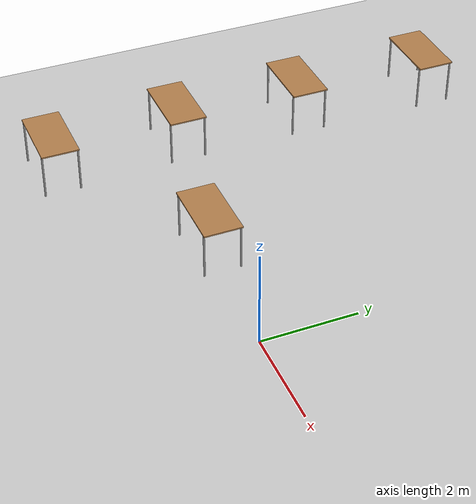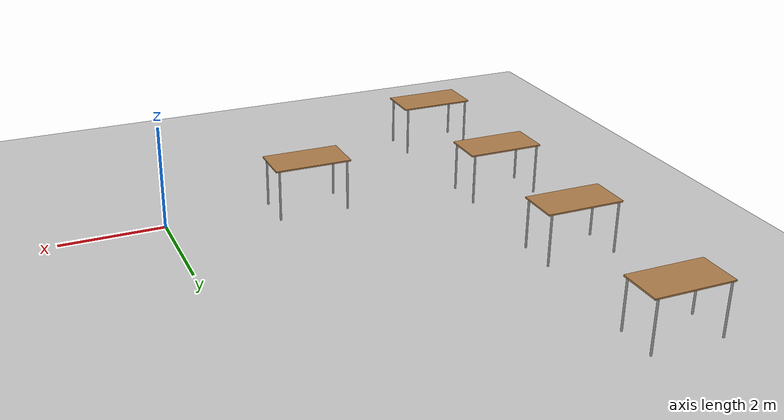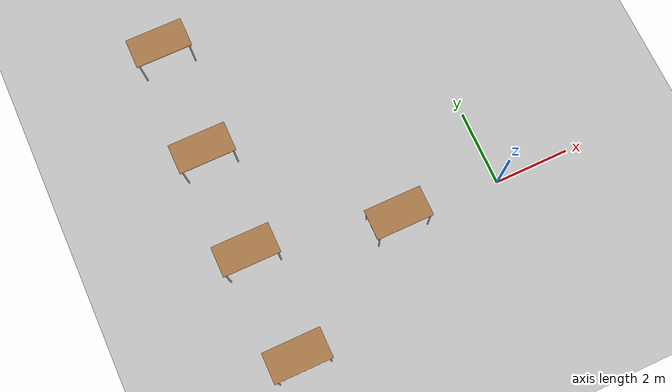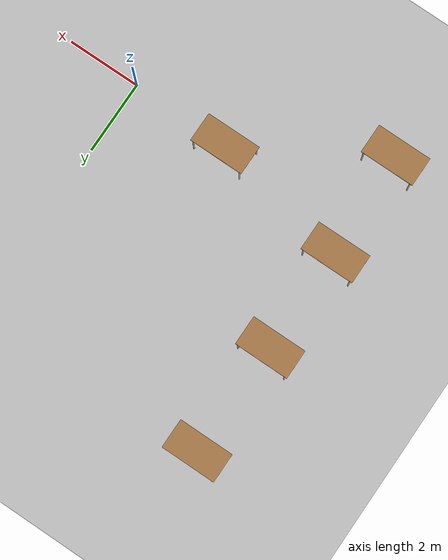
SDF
<sdf version="1.6">
 <world name="default">
  <model name="ground_plane">
   <static>1</static>
   <link name="link">
    <collision name="collision">
     <geometry><plane><normal>0 0 1</normal><size>100 100</size></plane></geometry>
     <surface>
      <contact><collide_bitmask>65535</collide_bitmask></contact>
      <friction><ode><mu>100</mu><mu2>50</mu2></ode></friction>
     </surface>
    </collision>
    <visual name="visual">
     <cast_shadows>0</cast_shadows>
     <geometry><plane><normal>0 0 1</normal><size>100 100</size></plane></geometry>
     <material>
      <script><uri>file://media/materials/scripts/gazebo.material</uri><name>Gazebo/Grey</name></script>
     </material>
    </visual>
   </link>
  </model>
  <model name="table_3">
   <static>1</static>
   <link name="link">
    <collision name="surface">
     <pose>0 0 1 0 -0 0</pose>
     <geometry><box><size>1.5 0.8 0.03</size></box></geometry>
     <surface><friction><ode><mu>0.6</mu><mu2>0.6</mu2></ode></friction></surface>
    </collision>
    <visual name="visual1">
     <pose>0 0 1 0 -0 0</pose>
     <geometry><box><size>1.5 0.8 0.03</size></box></geometry>
     <material>
      <script><uri>file://media/materials/scripts/gazebo.material</uri><name>Gazebo/Wood</name></script>
     </material>
    </visual>
    <collision name="front_left_leg">
     <pose>0.68 0.38 0.5 0 -0 0</pose>
     <geometry><cylinder><radius>0.02</radius><length>1</length></cylinder></geometry>
    </collision>
    <visual name="front_left_leg">
     <pose>0.68 0.38 0.5 0 -0 0</pose>
     <geometry><cylinder><radius>0.02</radius><length>1</length></cylinder></geometry>
     <material>
      <script><uri>file://media/materials/scripts/gazebo.material</uri><name>Gazebo/Grey</name></script>
     </material>
    </visual>
    <collision name="front_right_leg">
     <pose>0.68 -0.38 0.5 0 -0 0</pose>
     <geometry><cylinder><radius>0.02</radius><length>1</length></cylinder></geometry>
    </collision>
    <visual name="front_right_leg">
     <pose>0.68 -0.38 0.5 0 -0 0</pose>
     <geometry><cylinder><radius>0.02</radius><length>1</length></cylinder></geometry>
     <material>
      <script><uri>file://media/materials/scripts/gazebo.material</uri><name>Gazebo/Grey</name></script>
     </material>
    </visual>
    <collision name="back_right_leg">
     <pose>-0.68 -0.38 0.5 0 -0 0</pose>
     <geometry><cylinder><radius>0.02</radius><length>1</length></cylinder></geometry>
    </collision>
    <visual name="back_right_leg">
     <pose>-0.68 -0.38 0.5 0 -0 0</pose>
     <geometry><cylinder><radius>0.02</radius><length>1</length></cylinder></geometry>
     <material>
      <script><uri>file://media/materials/scripts/gazebo.material</uri><name>Gazebo/Grey</name></script>
     </material>
    </visual>
    <collision name="back_left_leg">
     <pose>-0.68 0.38 0.5 0 -0 0</pose>
     <geometry><cylinder><radius>0.02</radius><length>1</length></cylinder></geometry>
    </collision>
    <visual name="back_left_leg">
     <pose>-0.68 0.38 0.5 0 -0 0</pose>
     <geometry><cylinder><radius>0.02</radius><length>1</length></cylinder></geometry>
     <material>
      <script><uri>file://media/materials/scripts/gazebo.material</uri><name>Gazebo/Grey</name></script>
     </material>
    </visual>
   </link>
   <pose>-2.77057 0.136974 0 0 -0 0</pose>
  </model>
  <model name="table_9">
   <static>1</static>
   <link name="link">
    <collision name="surface">
     <pose>0 0 1 0 -0 0</pose>
     <geometry><box><size>1.5 0.8 0.03</size></box></geometry>
     <surface><friction><ode><mu>0.6</mu><mu2>0.6</mu2></ode></friction></surface>
    </collision>
    <visual name="visual1">
     <pose>0 0 1 0 -0 0</pose>
     <geometry><box><size>1.5 0.8 0.03</size></box></geometry>
     <material>
      <script><uri>file://media/materials/scripts/gazebo.material</uri><name>Gazebo/Wood</name></script>
     </material>
    </visual>
    <collision name="front_left_leg">
     <pose>0.68 0.38 0.5 0 -0 0</pose>
     <geometry><cylinder><radius>0.02</radius><length>1</length></cylinder></geometry>
    </collision>
    <visual name="front_left_leg">
     <pose>0.68 0.38 0.5 0 -0 0</pose>
     <geometry><cylinder><radius>0.02</radius><length>1</length></cylinder></geometry>
     <material>
      <script><uri>file://media/materials/scripts/gazebo.material</uri><name>Gazebo/Grey</name></script>
     </material>
    </visual>
    <collision name="front_right_leg">
     <pose>0.68 -0.38 0.5 0 -0 0</pose>
     <geometry><cylinder><radius>0.02</radius><length>1</length></cylinder></geometry>
    </collision>
    <visual name="front_right_leg">
     <pose>0.68 -0.38 0.5 0 -0 0</pose>
     <geometry><cylinder><radius>0.02</radius><length>1</length></cylinder></geometry>
     <material>
      <script><uri>file://media/materials/scripts/gazebo.material</uri><name>Gazebo/Grey</name></script>
     </material>
    </visual>
    <collision name="back_right_leg">
     <pose>-0.68 -0.38 0.5 0 -0 0</pose>
     <geometry><cylinder><radius>0.02</radius><length>1</length></cylinder></geometry>
    </collision>
    <visual name="back_right_leg">
     <pose>-0.68 -0.38 0.5 0 -0 0</pose>
     <geometry><cylinder><radius>0.02</radius><length>1</length></cylinder></geometry>
     <material>
      <script><uri>file://media/materials/scripts/gazebo.material</uri><name>Gazebo/Grey</name></script>
     </material>
    </visual>
    <collision name="back_left_leg">
     <pose>-0.68 0.38 0.5 0 -0 0</pose>
     <geometry><cylinder><radius>0.02</radius><length>1</length></cylinder></geometry>
    </collision>
    <visual name="back_left_leg">
     <pose>-0.68 0.38 0.5 0 -0 0</pose>
     <geometry><cylinder><radius>0.02</radius><length>1</length></cylinder></geometry>
     <material>
      <script><uri>file://media/materials/scripts/gazebo.material</uri><name>Gazebo/Grey</name></script>
     </material>
    </visual>
   </link>
   <pose>-6.42408 6.68953 0 0 -0 0</pose>
  </model>
  <model name="table_10">
   <static>1</static>
   <link name="link">
    <collision name="surface">
     <pose>0 0 1 0 -0 0</pose>
     <geometry><box><size>1.5 0.8 0.03</size></box></geometry>
     <surface><friction><ode><mu>0.6</mu><mu2>0.6</mu2></ode></friction></surface>
    </collision>
    <visual name="visual1">
     <pose>0 0 1 0 -0 0</pose>
     <geometry><box><size>1.5 0.8 0.03</size></box></geometry>
     <material>
      <script><uri>file://media/materials/scripts/gazebo.material</uri><name>Gazebo/Wood</name></script>
     </material>
    </visual>
    <collision name="front_left_leg">
     <pose>0.68 0.38 0.5 0 -0 0</pose>
     <geometry><cylinder><radius>0.02</radius><length>1</length></cylinder></geometry>
    </collision>
    <visual name="front_left_leg">
     <pose>0.68 0.38 0.5 0 -0 0</pose>
     <geometry><cylinder><radius>0.02</radius><length>1</length></cylinder></geometry>
     <material>
      <script><uri>file://media/materials/scripts/gazebo.material</uri><name>Gazebo/Grey</name></script>
     </material>
    </visual>
    <collision name="front_right_leg">
     <pose>0.68 -0.38 0.5 0 -0 0</pose>
     <geometry><cylinder><radius>0.02</radius><length>1</length></cylinder></geometry>
    </collision>
    <visual name="front_right_leg">
     <pose>0.68 -0.38 0.5 0 -0 0</pose>
     <geometry><cylinder><radius>0.02</radius><length>1</length></cylinder></geometry>
     <material>
      <script><uri>file://media/materials/scripts/gazebo.material</uri><name>Gazebo/Grey</name></script>
     </material>
    </visual>
    <collision name="back_right_leg">
     <pose>-0.68 -0.38 0.5 0 -0 0</pose>
     <geometry><cylinder><radius>0.02</radius><length>1</length></cylinder></geometry>
    </collision>
    <visual name="back_right_leg">
     <pose>-0.68 -0.38 0.5 0 -0 0</pose>
     <geometry><cylinder><radius>0.02</radius><length>1</length></cylinder></geometry>
     <material>
      <script><uri>file://media/materials/scripts/gazebo.material</uri><name>Gazebo/Grey</name></script>
     </material>
    </visual>
    <collision name="back_left_leg">
     <pose>-0.68 0.38 0.5 0 -0 0</pose>
     <geometry><cylinder><radius>0.02</radius><length>1</length></cylinder></geometry>
    </collision>
    <visual name="back_left_leg">
     <pose>-0.68 0.38 0.5 0 -0 0</pose>
     <geometry><cylinder><radius>0.02</radius><length>1</length></cylinder></geometry>
     <material>
      <script><uri>file://media/materials/scripts/gazebo.material</uri><name>Gazebo/Grey</name></script>
     </material>
    </visual>
   </link>
   <pose>-6.48377 3.65196 0 0 -0 0</pose>
  </model>
  <model name="table_11">
   <static>1</static>
   <link name="link">
    <collision name="surface">
     <pose>0 0 1 0 -0 0</pose>
     <geometry><box><size>1.5 0.8 0.03</size></box></geometry>
     <surface><friction><ode><mu>0.6</mu><mu2>0.6</mu2></ode></friction></surface>
    </collision>
    <visual name="visual1">
     <pose>0 0 1 0 -0 0</pose>
     <geometry><box><size>1.5 0.8 0.03</size></box></geometry>
     <material>
      <script><uri>file://media/materials/scripts/gazebo.material</uri><name>Gazebo/Wood</name></script>
     </material>
    </visual>
    <collision name="front_left_leg">
     <pose>0.68 0.38 0.5 0 -0 0</pose>
     <geometry><cylinder><radius>0.02</radius><length>1</length></cylinder></geometry>
    </collision>
    <visual name="front_left_leg">
     <pose>0.68 0.38 0.5 0 -0 0</pose>
     <geometry><cylinder><radius>0.02</radius><length>1</length></cylinder></geometry>
     <material>
      <script><uri>file://media/materials/scripts/gazebo.material</uri><name>Gazebo/Grey</name></script>
     </material>
    </visual>
    <collision name="front_right_leg">
     <pose>0.68 -0.38 0.5 0 -0 0</pose>
     <geometry><cylinder><radius>0.02</radius><length>1</length></cylinder></geometry>
    </collision>
    <visual name="front_right_leg">
     <pose>0.68 -0.38 0.5 0 -0 0</pose>
     <geometry><cylinder><radius>0.02</radius><length>1</length></cylinder></geometry>
     <material>
      <script><uri>file://media/materials/scripts/gazebo.material</uri><name>Gazebo/Grey</name></script>
     </material>
    </visual>
    <collision name="back_right_leg">
     <pose>-0.68 -0.38 0.5 0 -0 0</pose>
     <geometry><cylinder><radius>0.02</radius><length>1</length></cylinder></geometry>
    </collision>
    <visual name="back_right_leg">
     <pose>-0.68 -0.38 0.5 0 -0 0</pose>
     <geometry><cylinder><radius>0.02</radius><length>1</length></cylinder></geometry>
     <material>
      <script><uri>file://media/materials/scripts/gazebo.material</uri><name>Gazebo/Grey</name></script>
     </material>
    </visual>
    <collision name="back_left_leg">
     <pose>-0.68 0.38 0.5 0 -0 0</pose>
     <geometry><cylinder><radius>0.02</radius><length>1</length></cylinder></geometry>
    </collision>
    <visual name="back_left_leg">
     <pose>-0.68 0.38 0.5 0 -0 0</pose>
     <geometry><cylinder><radius>0.02</radius><length>1</length></cylinder></geometry>
     <material>
      <script><uri>file://media/materials/scripts/gazebo.material</uri><name>Gazebo/Grey</name></script>
     </material>
    </visual>
   </link>
   <pose>-6.49772 0.846697 0 0 -0 0</pose>
  </model>
  <model name="table_12">
   <static>1</static>
   <link name="link">
    <collision name="surface">
     <pose>0 0 1 0 -0 0</pose>
     <geometry><box><size>1.5 0.8 0.03</size></box></geometry>
     <surface><friction><ode><mu>0.6</mu><mu2>0.6</mu2></ode></friction></surface>
    </collision>
    <visual name="visual1">
     <pose>0 0 1 0 -0 0</pose>
     <geometry><box><size>1.5 0.8 0.03</size></box></geometry>
     <material>
      <script><uri>file://media/materials/scripts/gazebo.material</uri><name>Gazebo/Wood</name></script>
     </material>
    </visual>
    <collision name="front_left_leg">
     <pose>0.68 0.38 0.5 0 -0 0</pose>
     <geometry><cylinder><radius>0.02</radius><length>1</length></cylinder></geometry>
    </collision>
    <visual name="front_left_leg">
     <pose>0.68 0.38 0.5 0 -0 0</pose>
     <geometry><cylinder><radius>0.02</radius><length>1</length></cylinder></geometry>
     <material>
      <script><uri>file://media/materials/scripts/gazebo.material</uri><name>Gazebo/Grey</name></script>
     </material>
    </visual>
    <collision name="front_right_leg">
     <pose>0.68 -0.38 0.5 0 -0 0</pose>
     <geometry><cylinder><radius>0.02</radius><length>1</length></cylinder></geometry>
    </collision>
    <visual name="front_right_leg">
     <pose>0.68 -0.38 0.5 0 -0 0</pose>
     <geometry><cylinder><radius>0.02</radius><length>1</length></cylinder></geometry>
     <material>
      <script><uri>file://media/materials/scripts/gazebo.material</uri><name>Gazebo/Grey</name></script>
     </material>
    </visual>
    <collision name="back_right_leg">
     <pose>-0.68 -0.38 0.5 0 -0 0</pose>
     <geometry><cylinder><radius>0.02</radius><length>1</length></cylinder></geometry>
    </collision>
    <visual name="back_right_leg">
     <pose>-0.68 -0.38 0.5 0 -0 0</pose>
     <geometry><cylinder><radius>0.02</radius><length>1</length></cylinder></geometry>
     <material>
      <script><uri>file://media/materials/scripts/gazebo.material</uri><name>Gazebo/Grey</name></script>
     </material>
    </visual>
    <collision name="back_left_leg">
     <pose>-0.68 0.38 0.5 0 -0 0</pose>
     <geometry><cylinder><radius>0.02</radius><length>1</length></cylinder></geometry>
    </collision>
    <visual name="back_left_leg">
     <pose>-0.68 0.38 0.5 0 -0 0</pose>
     <geometry><cylinder><radius>0.02</radius><length>1</length></cylinder></geometry>
     <material>
      <script><uri>file://media/materials/scripts/gazebo.material</uri><name>Gazebo/Grey</name></script>
     </material>
    </visual>
   </link>
   <pose>-6.38294 -1.96623 0 0 -0 0</pose>
  </model>
 </world>
</sdf>
